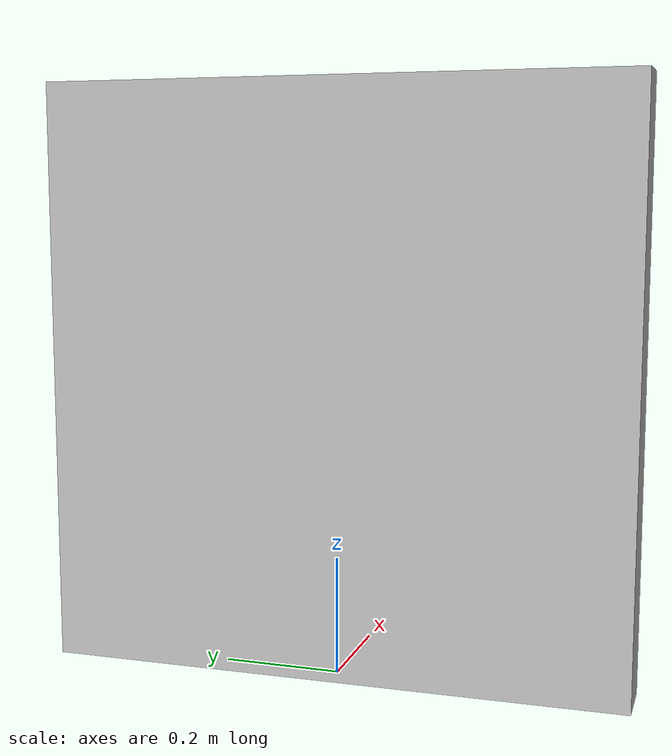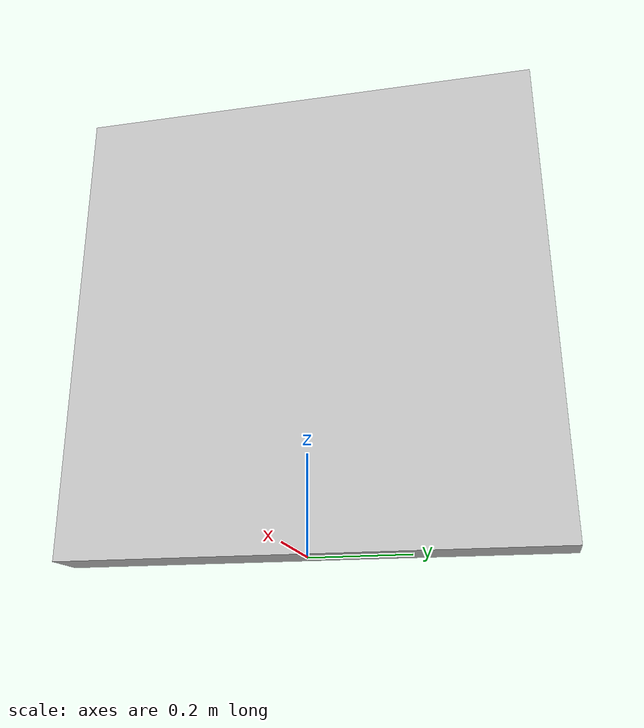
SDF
<?xml version='1.0'?>
<sdf version="1.4">
  <model name="wall">
    <pose>0 0 0.5 0 0 0</pose>
    <link name="base">
      <inertial>
        <mass>1.0</mass>
        <inertia>
          <ixx>0.01</ixx>
          <iyy>0.01</iyy>
          <izz>0.01</izz>
          <ixy>0.0</ixy>
          <iyz>0.0</iyz>
          <ixz>0.0</ixz>
        </inertia>
      </inertial>
      <collision name="collision">
        <geometry>
          <box>
            <size>0.1 1.0 1</size>
          </box>
        </geometry>
      </collision>
      <visual name="visual">
        <geometry>
          <box>
            <size>0.1 1.0 1</size>
          </box>
        </geometry>
      </visual>
    </link>
  </model>
</sdf>
